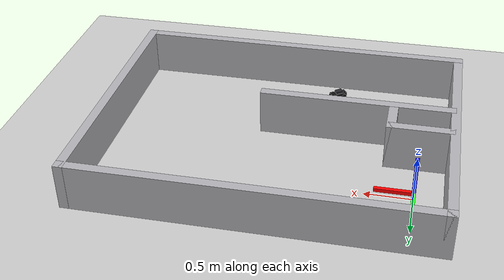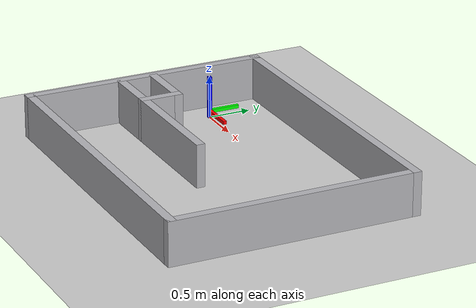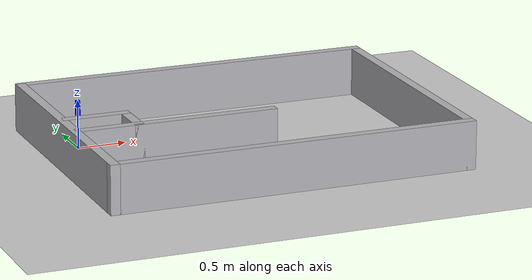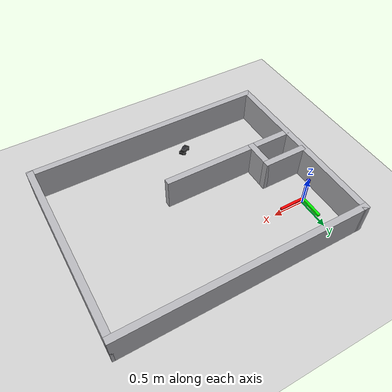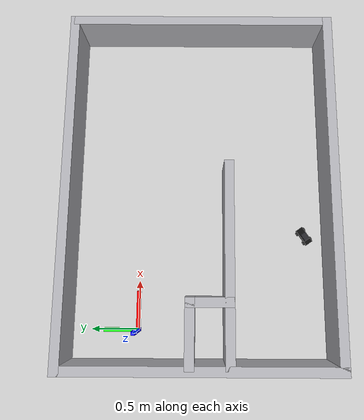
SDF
<?xml version="1.0"?>
<sdf version='1.8'>
    <world name='minicar_room'>
        <physics name='1ms' type='ignored'>
            <max_step_size>0.003</max_step_size>
            <real_time_factor>1</real_time_factor>
            <real_time_update_rate>1000</real_time_update_rate>
        </physics>
        <plugin name='ignition::gazebo::systems::Physics' filename='ignition-gazebo-physics-system' />
        <plugin name='ignition::gazebo::systems::UserCommands' filename='ignition-gazebo-user-commands-system' />
        <plugin name='ignition::gazebo::systems::SceneBroadcaster' filename='ignition-gazebo-scene-broadcaster-system' />
        <plugin name='ignition::gazebo::systems::Contact' filename='ignition-gazebo-contact-system' />
        <light name='sun' type='directional'>
            <cast_shadows>1</cast_shadows>
            <pose>0 0 10 0 -0 0</pose>
            <diffuse>0.8 0.8 0.8 1</diffuse>
            <specular>0.2 0.2 0.2 1</specular>
            <attenuation>
                <range>1000</range>
                <constant>0.90000000000000002</constant>
                <linear>0.01</linear>
                <quadratic>0.001</quadratic>
            </attenuation>
            <direction>-0.5 0.1 -0.9</direction>
            <spot>
                <inner_angle>0</inner_angle>
                <outer_angle>0</outer_angle>
                <falloff>0</falloff>
            </spot>
        </light>
        <gravity>0 0 -9.8</gravity>
        <magnetic_field>6e-06 2.3e-05 -4.2e-05</magnetic_field>
        <atmosphere type='adiabatic' />
        <scene>
            <ambient>0.4 0.4 0.4 1</ambient>
            <background>0.7 0.7 0.7 1</background>
            <shadows>1</shadows>
        </scene>
        <model name='ground_plane'>
            <static>1</static>
            <link name='link'>
                <collision name='collision'>
                    <geometry>
                        <plane>
                            <normal>0 0 1</normal>
                            <size>100 100</size>
                        </plane>
                    </geometry>
                    <surface>
                        <friction>
                            <ode />
                        </friction>
                        <bounce />
                        <contact />
                    </surface>
                </collision>
                <visual name='visual'>
                    <geometry>
                        <plane>
                            <normal>0 0 1</normal>
                            <size>100 100</size>
                        </plane>
                    </geometry>
                    <material>
                        <ambient>0.8 0.8 0.8 1</ambient>
                        <diffuse>0.8 0.8 0.8 1</diffuse>
                        <specular>0.8 0.8 0.8 1</specular>
                    </material>
                    <plugin name='__default__' filename='__default__' />
                </visual>
            </link>
            <plugin name='__default__' filename='__default__' />
            <pose>0 0 0 0 -0 0</pose>
        </model>
        <model name='walls'>
            <static>true</static>
            <link name='wall0'>
                <pose>1.5000 -2.0500 0.2500 0 0 0.00000</pose>
                <collision name='col'><geometry><box><size>3.8000 0.1000 0.5000</size></box></geometry></collision>
                <visual name='vis'><geometry><box><size>3.8000 0.1000 0.5000</size></box></geometry><material><ambient>0.7 0.7 0.72 1</ambient><diffuse>0.7 0.7 0.72 1</diffuse><specular>0.2 0.2 0.2 1</specular></material></visual>
            </link>
            <link name='wall1'>
                <pose>1.5000 0.7500 0.2500 0 0 0.00000</pose>
                <collision name='col'><geometry><box><size>3.8000 0.1000 0.5000</size></box></geometry></collision>
                <visual name='vis'><geometry><box><size>3.8000 0.1000 0.5000</size></box></geometry><material><ambient>0.7 0.7 0.72 1</ambient><diffuse>0.7 0.7 0.72 1</diffuse><specular>0.2 0.2 0.2 1</specular></material></visual>
            </link>
            <link name='wall2'>
                <pose>-0.3500 -0.6500 0.2500 0 0 1.57080</pose>
                <collision name='col'><geometry><box><size>2.9000 0.1000 0.5000</size></box></geometry></collision>
                <visual name='vis'><geometry><box><size>2.9000 0.1000 0.5000</size></box></geometry><material><ambient>0.7 0.7 0.72 1</ambient><diffuse>0.7 0.7 0.72 1</diffuse><specular>0.2 0.2 0.2 1</specular></material></visual>
            </link>
            <link name='wall3'>
                <pose>3.3500 -0.6500 0.2500 0 0 1.57080</pose>
                <collision name='col'><geometry><box><size>2.9000 0.1000 0.5000</size></box></geometry></collision>
                <visual name='vis'><geometry><box><size>2.9000 0.1000 0.5000</size></box></geometry><material><ambient>0.7 0.7 0.72 1</ambient><diffuse>0.7 0.7 0.72 1</diffuse><specular>0.2 0.2 0.2 1</specular></material></visual>
            </link>
            <link name='wall4'>
                <pose>0.7000 -0.9500 0.2500 0 0 0.00000</pose>
                <collision name='col'><geometry><box><size>2.1000 0.1000 0.5000</size></box></geometry></collision>
                <visual name='vis'><geometry><box><size>2.1000 0.1000 0.5000</size></box></geometry><material><ambient>0.7 0.7 0.72 1</ambient><diffuse>0.7 0.7 0.72 1</diffuse><specular>0.2 0.2 0.2 1</specular></material></visual>
            </link>
            <link name='wall5'>
                <pose>0.3000 -0.7500 0.2500 0 0 1.57080</pose>
                <collision name='col'><geometry><box><size>0.5000 0.1000 0.5000</size></box></geometry></collision>
                <visual name='vis'><geometry><box><size>0.5000 0.1000 0.5000</size></box></geometry><material><ambient>0.7 0.7 0.72 1</ambient><diffuse>0.7 0.7 0.72 1</diffuse><specular>0.2 0.2 0.2 1</specular></material></visual>
            </link>
            <link name='wall6'>
                <pose>0.0000 -0.5500 0.2500 0 0 0.00000</pose>
                <collision name='col'><geometry><box><size>0.7000 0.1000 0.5000</size></box></geometry></collision>
                <visual name='vis'><geometry><box><size>0.7000 0.1000 0.5000</size></box></geometry><material><ambient>0.7 0.7 0.72 1</ambient><diffuse>0.7 0.7 0.72 1</diffuse><specular>0.2 0.2 0.2 1</specular></material></visual>
            </link>
        </model>
        <model name='origin_axes'>
            <static>true</static>
            <link name='x_axis'>
                <pose>0.20 0 0.08 0 0 0</pose>
                <visual name='v'><geometry><box><size>0.40 0.04 0.04</size></box></geometry><material><ambient>1 0 0 1</ambient><diffuse>1 0 0 1</diffuse><emissive>1 0 0 1</emissive></material></visual>
            </link>
            <link name='y_axis'>
                <pose>0 0.18 0.08 0 0 0</pose>
                <visual name='v'><geometry><box><size>0.04 0.36 0.04</size></box></geometry><material><ambient>0 1 0 1</ambient><diffuse>0 1 0 1</diffuse><emissive>0 1 0 1</emissive></material></visual>
            </link>
            <link name='z_axis'>
                <pose>0 0 0.25 0 0 0</pose>
                <visual name='v'><geometry><box><size>0.04 0.04 0.50</size></box></geometry><material><ambient>0 0 1 1</ambient><diffuse>0 0 1 1</diffuse><emissive>0 0 1 1</emissive></material></visual>
            </link>
        </model>
        <model name='rc_car'>
            <static>true</static>
            <pose>1.0000 -1.8000 0 0 0 0.60000</pose>
            <link name='body'>
                <pose>0 0 0.0350 0 0 0</pose>
                <collision name='col'><geometry><box><size>0.1900 0.0800 0.0400</size></box></geometry></collision>
                <visual name='vis'><geometry><box><size>0.1900 0.0800 0.0400</size></box></geometry><material><ambient>0.05 0.05 0.05 1</ambient><diffuse>0.05 0.05 0.05 1</diffuse><specular>0.1 0.1 0.1 1</specular></material></visual>
            </link>
            <link name='cabin'>
                <pose>-0.0100 0 0.0675 0 0 0</pose>
                <collision name='col'><geometry><box><size>0.0800 0.0600 0.0250</size></box></geometry></collision>
                <visual name='vis'><geometry><box><size>0.0800 0.0600 0.0250</size></box></geometry><material><ambient>0.15 0.15 0.17 1</ambient><diffuse>0.15 0.15 0.17 1</diffuse><specular>0.2 0.2 0.2 1</specular></material></visual>
            </link>
            <link name='wheel_fl'>
                <pose>0.0600 0.0450 0.0220 1.5708 0 0</pose>
                <visual name='vis'><geometry><cylinder><radius>0.0220</radius><length>0.0180</length></cylinder></geometry><material><ambient>0.02 0.02 0.02 1</ambient><diffuse>0.02 0.02 0.02 1</diffuse></material></visual>
            </link>
            <link name='wheel_fr'>
                <pose>0.0600 -0.0450 0.0220 1.5708 0 0</pose>
                <visual name='vis'><geometry><cylinder><radius>0.0220</radius><length>0.0180</length></cylinder></geometry><material><ambient>0.02 0.02 0.02 1</ambient><diffuse>0.02 0.02 0.02 1</diffuse></material></visual>
            </link>
            <link name='wheel_rl'>
                <pose>-0.0600 0.0450 0.0220 1.5708 0 0</pose>
                <visual name='vis'><geometry><cylinder><radius>0.0220</radius><length>0.0180</length></cylinder></geometry><material><ambient>0.02 0.02 0.02 1</ambient><diffuse>0.02 0.02 0.02 1</diffuse></material></visual>
            </link>
            <link name='wheel_rr'>
                <pose>-0.0600 -0.0450 0.0220 1.5708 0 0</pose>
                <visual name='vis'><geometry><cylinder><radius>0.0220</radius><length>0.0180</length></cylinder></geometry><material><ambient>0.02 0.02 0.02 1</ambient><diffuse>0.02 0.02 0.02 1</diffuse></material></visual>
            </link>
        </model>
    </world>
</sdf>
